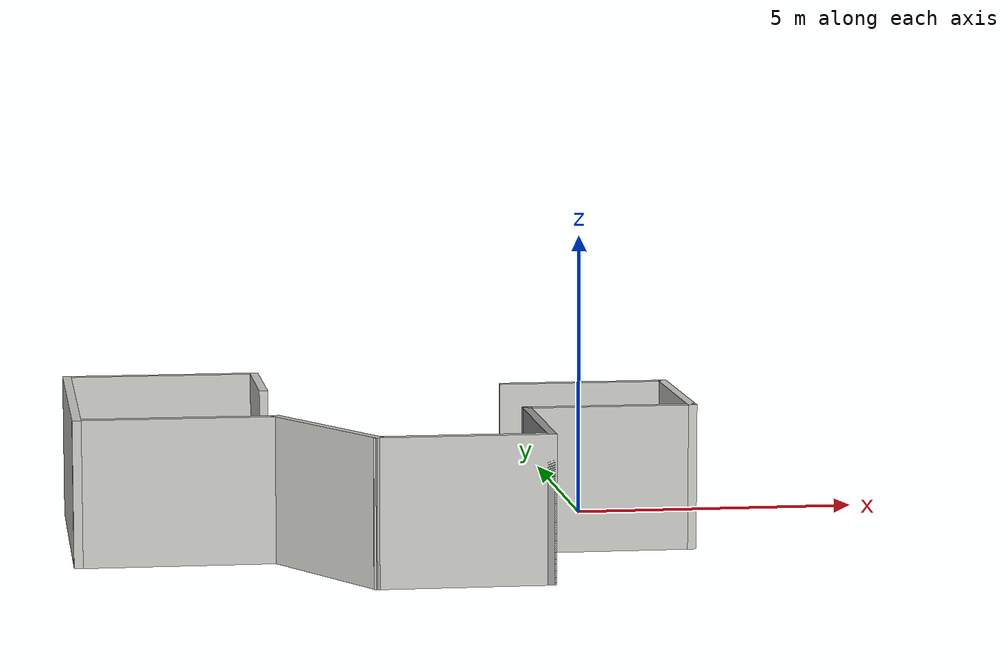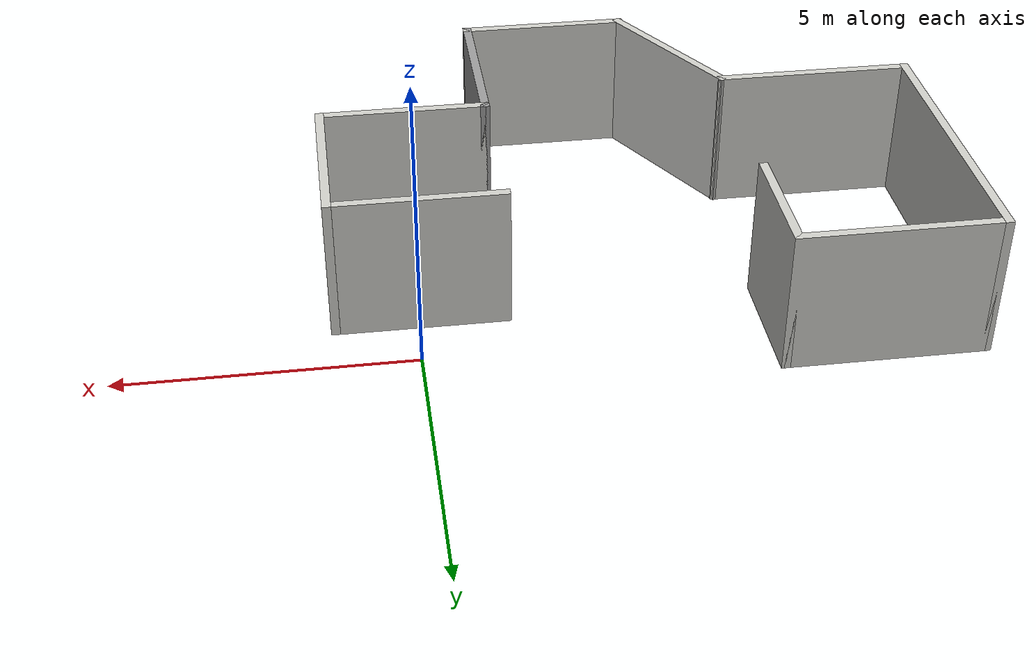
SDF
<?xml version='1.0'?>
<sdf version='1.6'>
  <model name='room_test01'>
    <pose frame=''>-3.8862 -2.87964 0 0 -0 0</pose>
    <link name='Wall_0'>
      <collision name='Wall_0_Collision'>
        <geometry>
          <box>
            <size>3 0.15 2.5</size>
          </box>
        </geometry>
        <pose frame=''>0 0 1.25 0 -0 0</pose>
      </collision>
      <visual name='Wall_0_Visual'>
        <pose frame=''>0 0 1.25 0 -0 0</pose>
        <geometry>
          <box>
            <size>3 0.15 2.5</size>
          </box>
        </geometry>
        <material>
          <script>
            <uri>file://media/materials/scripts/gazebo.material</uri>
            <name>Gazebo/CeilingTiled</name>
          </script>
          <ambient>1 1 1 1</ambient>
        </material>
        <meta>
          <layer>0</layer>
        </meta>
      </visual>
      <pose frame=''>3.8125 -0.92036 0 0 -0 0</pose>
    </link>
    <link name='Wall_1'>
      <collision name='Wall_1_Collision'>
        <geometry>
          <box>
            <size>3 0.15 2.5</size>
          </box>
        </geometry>
        <pose frame=''>0 0 1.25 0 -0 0</pose>
      </collision>
      <visual name='Wall_1_Visual'>
        <pose frame=''>0 0 1.25 0 -0 0</pose>
        <geometry>
          <box>
            <size>3 0.15 2.5</size>
          </box>
        </geometry>
        <material>
          <script>
            <uri>file://media/materials/scripts/gazebo.material</uri>
            <name>Gazebo/CeilingTiled</name>
          </script>
          <ambient>1 1 1 1</ambient>
        </material>
        <meta>
          <layer>0</layer>
        </meta>
      </visual>
      <pose frame=''>5.2375 0.50464 0 0 -0 1.5708</pose>
    </link>
    <link name='Wall_10'>
      <collision name='Wall_10_Collision'>
        <geometry>
          <box>
            <size>3.5 0.15 2.5</size>
          </box>
        </geometry>
        <pose frame=''>0 0 1.25 0 -0 0</pose>
      </collision>
      <visual name='Wall_10_Visual'>
        <pose frame=''>0 0 1.25 0 -0 0</pose>
        <geometry>
          <box>
            <size>3.5 0.15 2.5</size>
          </box>
        </geometry>
        <material>
          <script>
            <uri>file://media/materials/scripts/gazebo.material</uri>
            <name>Gazebo/CeilingTiled</name>
          </script>
          <ambient>1 1 1 1</ambient>
        </material>
        <meta>
          <layer>0</layer>
        </meta>
      </visual>
      <pose frame=''>-3.5625 -1.30219 0 0 -0 3.14159</pose>
    </link>
    <link name='Wall_11'>
      <collision name='Wall_11_Collision'>
        <geometry>
          <box>
            <size>5.25 0.15 2.5</size>
          </box>
        </geometry>
        <pose frame=''>0 0 1.25 0 -0 0</pose>
      </collision>
      <visual name='Wall_11_Visual'>
        <pose frame=''>0 0 1.25 0 -0 0</pose>
        <geometry>
          <box>
            <size>5.25 0.15 2.5</size>
          </box>
        </geometry>
        <material>
          <script>
            <uri>file://media/materials/scripts/gazebo.material</uri>
            <name>Gazebo/CeilingTiled</name>
          </script>
          <ambient>1 1 1 1</ambient>
        </material>
        <meta>
          <layer>0</layer>
        </meta>
      </visual>
      <pose frame=''>-5.2375 1.24781 0 0 -0 1.5708</pose>
    </link>
    <link name='Wall_14'>
      <collision name='Wall_14_Collision'>
        <geometry>
          <box>
            <size>3.5 0.15 2.5</size>
          </box>
        </geometry>
        <pose frame=''>0 0 1.25 0 -0 0</pose>
      </collision>
      <visual name='Wall_14_Visual'>
        <pose frame=''>0 0 1.25 0 -0 0</pose>
        <geometry>
          <box>
            <size>3.5 0.15 2.5</size>
          </box>
        </geometry>
        <material>
          <script>
            <uri>file://media/materials/scripts/gazebo.material</uri>
            <name>Gazebo/CeilingTiled</name>
          </script>
          <ambient>1 1 1 1</ambient>
        </material>
        <meta>
          <layer>0</layer>
        </meta>
      </visual>
      <pose frame=''>-3.5625 3.79781 0 0 -0 0</pose>
    </link>
    <link name='Wall_15'>
      <collision name='Wall_15_Collision'>
        <geometry>
          <box>
            <size>2.25 0.15 2.5</size>
          </box>
        </geometry>
        <pose frame=''>0 0 1.25 0 -0 0</pose>
      </collision>
      <visual name='Wall_15_Visual'>
        <pose frame=''>0 0 1.25 0 -0 0</pose>
        <geometry>
          <box>
            <size>2.25 0.15 2.5</size>
          </box>
        </geometry>
        <material>
          <script>
            <uri>file://media/materials/scripts/gazebo.material</uri>
            <name>Gazebo/CeilingTiled</name>
          </script>
          <ambient>1 1 1 1</ambient>
        </material>
        <meta>
          <layer>0</layer>
        </meta>
      </visual>
      <pose frame=''>-1.8875 2.74781 0 0 0 -1.5708</pose>
    </link>
    <link name='Wall_2'>
      <collision name='Wall_2_Collision'>
        <geometry>
          <box>
            <size>3 0.15 2.5</size>
          </box>
        </geometry>
        <pose frame=''>0 0 1.25 0 -0 0</pose>
      </collision>
      <visual name='Wall_2_Visual'>
        <pose frame=''>0 0 1.25 0 -0 0</pose>
        <geometry>
          <box>
            <size>3 0.15 2.5</size>
          </box>
        </geometry>
        <material>
          <script>
            <uri>file://media/materials/scripts/gazebo.material</uri>
            <name>Gazebo/CeilingTiled</name>
          </script>
          <ambient>1 1 1 1</ambient>
        </material>
        <meta>
          <layer>0</layer>
        </meta>
      </visual>
      <pose frame=''>3.8125 1.92964 0 0 -0 3.14159</pose>
    </link>
    <link name='Wall_4'>
      <collision name='Wall_4_Collision'>
        <geometry>
          <box>
            <size>0.16 0.15 2.5</size>
          </box>
        </geometry>
        <pose frame=''>0 0 1.25 0 -0 0</pose>
      </collision>
      <visual name='Wall_4_Visual'>
        <pose frame=''>0 0 1.25 0 -0 0</pose>
        <geometry>
          <box>
            <size>0.16 0.15 2.5</size>
          </box>
        </geometry>
        <material>
          <script>
            <uri>file://media/materials/scripts/gazebo.material</uri>
            <name>Gazebo/Grey</name>
          </script>
          <ambient>1 1 1 1</ambient>
        </material>
        <meta>
          <layer>0</layer>
        </meta>
      </visual>
      <pose frame=''>2.3925 -0.92036 0 0 -0 0</pose>
    </link>
    <link name='Wall_7'>
      <collision name='Wall_7_Collision'>
        <geometry>
          <box>
            <size>3 0.15 2.5</size>
          </box>
        </geometry>
        <pose frame=''>0 0 1.25 0 -0 0</pose>
      </collision>
      <visual name='Wall_7_Visual'>
        <pose frame=''>0 0 1.25 0 -0 0</pose>
        <geometry>
          <box>
            <size>3 0.15 2.5</size>
          </box>
        </geometry>
        <material>
          <script>
            <uri>file://media/materials/scripts/gazebo.material</uri>
            <name>Gazebo/Grey</name>
          </script>
          <ambient>1 1 1 1</ambient>
        </material>
        <meta>
          <layer>0</layer>
        </meta>
      </visual>
      <pose frame=''>2.3875 -2.34536 0 0 0 -1.5708</pose>
    </link>
    <link name='Wall_8'>
      <collision name='Wall_8_Collision'>
        <geometry>
          <box>
            <size>3 0.15 2.5</size>
          </box>
        </geometry>
        <pose frame=''>0 0 1.25 0 -0 0</pose>
      </collision>
      <visual name='Wall_8_Visual'>
        <pose frame=''>0 0 1.25 0 -0 0</pose>
        <geometry>
          <box>
            <size>3 0.15 2.5</size>
          </box>
        </geometry>
        <material>
          <script>
            <uri>file://media/materials/scripts/gazebo.material</uri>
            <name>Gazebo/CeilingTiled</name>
          </script>
          <ambient>1 1 1 1</ambient>
        </material>
        <meta>
          <layer>0</layer>
        </meta>
      </visual>
      <pose frame=''>0.9625 -3.77036 0 0 -0 3.14159</pose>
    </link>
    <link name='Wall_9'>
      <collision name='Wall_9_Collision'>
        <geometry>
          <box>
            <size>3 0.15 2.5</size>
          </box>
        </geometry>
        <pose frame=''>0 0 1.25 0 -0 0</pose>
      </collision>
      <visual name='Wall_9_Visual'>
        <pose frame=''>0 0 1.25 0 -0 0</pose>
        <geometry>
          <box>
            <size>3 0.15 2.5</size>
          </box>
        </geometry>
        <material>
          <script>
            <uri>file://media/materials/scripts/gazebo.material</uri>
            <name>Gazebo/CeilingTiled</name>
          </script>
          <ambient>1 1 1 1</ambient>
        </material>
        <meta>
          <layer>0</layer>
        </meta>
      </visual>
      <pose frame=''>-1.175 -2.53627 0 0 -0 2.0944</pose>
    </link>
    <static>1</static>
  </model>
</sdf>
